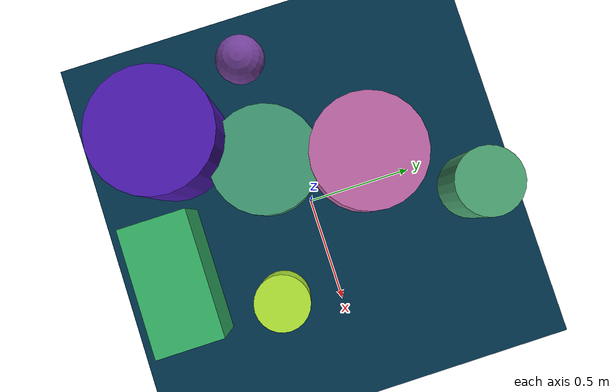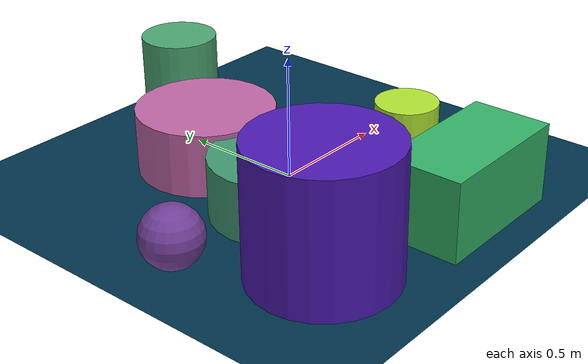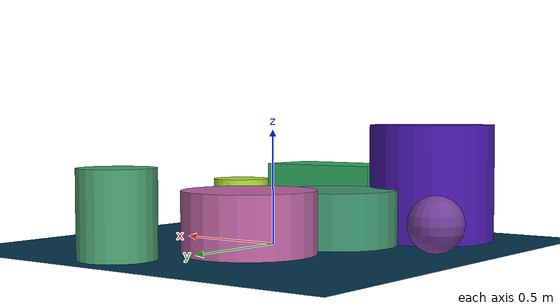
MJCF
<mujoco>
   <asset>
<texture type="skybox" builtin="gradient" rgb1="0.7 0.7 0.6" rgb2="0.1 0.5 0.0" width="256" height="256"/>
<texture name="flat_0" builtin="flat" rgb1="0.2 0.7 0.4" rgb2="0.2 0.7 0.4"  width="200" height="200"/>
<texture name="flat_1" builtin="flat" rgb1="0.7 0.9 0.2" rgb2="0.7 0.9 0.2"  width="200" height="200"/>
<texture name="gradient_2" builtin="gradient" rgb1="0.2 0.3 0.8" rgb2="0.7 0.2 0.4" width="200" height="200"/>
<texture name="gradient_3" builtin="gradient" rgb1="0.9 0.5 0.7" rgb2="0.6 0.3 0.6" width="200" height="200"/>
<texture name="checker_4" builtin="checker" type="2d" rgb1="0.2 0.7 0.7" rgb2="0.4 0.6 0.2" width="200" height="200"/>
<texture name="flat_5" builtin="flat" rgb1="0.3 0.1 0.7" rgb2="0.3 0.1 0.7"  width="200" height="200"/>
<texture name="checker_6" builtin="checker" type="2d" rgb1="0.5 0.3 0.9" rgb2="0.0 0.9 0.0" width="200" height="200"/><material name="flat_0_mat" reflectance="0" texture="flat_0" texuniform="true"/>
<material name="flat_1_mat" reflectance="0" texture="flat_1" texuniform="true"/>
<material name="gradient_2_mat" reflectance="0" texture="gradient_2" texuniform="true"/>
<material name="gradient_3_mat" reflectance="0" texture="gradient_3" texuniform="true"/>
<material name="checker_4_mat" reflectance="0" texrepeat="7 7" texture="checker_4" texuniform="false" />
<material name="flat_5_mat" reflectance="0" texture="flat_5" texuniform="true"/>
<material name="checker_6_mat" reflectance="0" texrepeat="7 7" texture="checker_6" texuniform="false" />
   </asset>

   <worldbody>
      <light diffuse=".9 .9 .9" pos="0 0 3" dir="0 0 -1"/>
     <geom type="plane" size="1 1 0.1" rgba="0.0 0.2 0.3 1"/>
<geom type="box" pos="0.17 -0.71 0.16" size="0.3 0.16 0.16" material="flat_0_mat" />
<geom type="cylinder" pos="0.41 -0.27 0.13" size="0.13 0.13 0.13" material="flat_1_mat" />
<geom type="sphere" pos="-0.75 -0.12 0.12" size="0.12 0.12 0.12" material="gradient_2_mat" />
<geom type="cylinder" pos="-0.13 0.32 0.13" size="0.28 0.13 0.13" material="gradient_3_mat" />
<geom type="cylinder" pos="0.17 0.77 0.18" size="0.16 0.18 0.18" material="checker_4_mat" />
<geom type="cylinder" pos="-0.47 -0.56 0.26" size="0.28 0.26 0.26" material="flat_5_mat" />
<geom type="cylinder" pos="-0.24 -0.15 0.12" size="0.26 0.12 0.12" material="checker_6_mat" /><camera euler="60 0 180" fovy="60" name="camera_a" pos="0 -1.5 1"></camera>   </worldbody>
</mujoco>
